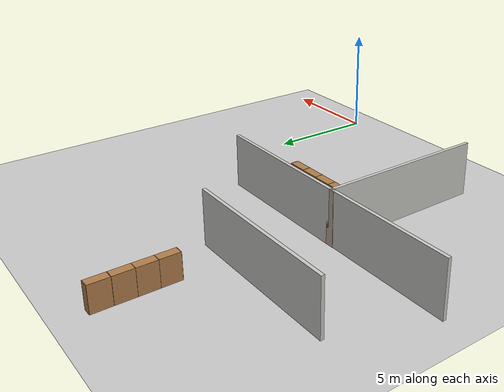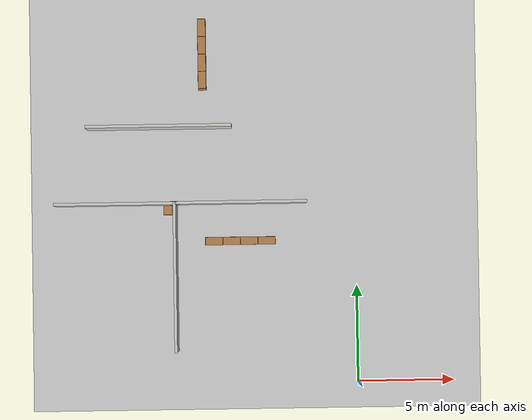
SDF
<sdf version="1.6">
 <world name="default">
  <model name="ground_plane">
   <static>1</static>
   <link name="link">
    <collision name="collision">
     <geometry><plane><normal>0 0 1</normal><size>100 100</size></plane></geometry>
     <surface><friction><ode><mu>100</mu><mu2>50</mu2></ode></friction></surface>
    </collision>
    <visual name="visual">
     <cast_shadows>0</cast_shadows>
     <geometry><plane><normal>0 0 1</normal><size>100 100</size></plane></geometry>
     <material>
      <script><uri>file://media/materials/scripts/gazebo.material</uri><name>Gazebo/Grey</name></script>
     </material>
    </visual>
   </link>
  </model>
  <model name="floor">
   <link name="Wall_136">
    <pose>-11.4201 14.599 0 0 -0 0</pose>
    <visual name="Wall_136_Visual">
     <pose>0 0 1.25 0 -0 0</pose>
     <geometry><box><size>7.5 0.15 2.5</size></box></geometry>
     <material>
      <script><uri>file://media/materials/scripts/gazebo.material</uri><name>Gazebo/CeilingTiled</name></script>
      <ambient>0.760784 0.662745 0.627451 1</ambient>
     </material>
     <meta><layer>0</layer></meta>
    </visual>
    <collision name="Wall_136_Collision">
     <pose>0 0 1.25 0 -0 0</pose>
     <geometry><box><size>7.5 0.15 2.5</size></box></geometry>
     <surface>
      <friction>
       <ode><mu>1</mu><mu2>1</mu2><fdir1>0 0 0</fdir1><slip1>0</slip1><slip2>0</slip2></ode>
       <torsional>
        <coefficient>1</coefficient>
        <patch_radius>0</patch_radius>
        <surface_radius>0</surface_radius>
        <use_patch_radius>1</use_patch_radius>
        <ode><slip>0</slip></ode>
       </torsional>
      </friction>
      <bounce><restitution_coefficient>0</restitution_coefficient><threshold>1e+06</threshold></bounce>
      <contact>
       <collide_without_contact>0</collide_without_contact>
       <collide_without_contact_bitmask>1</collide_without_contact_bitmask>
       <collide_bitmask>1</collide_bitmask>
       <ode>
        <soft_cfm>0</soft_cfm>
        <soft_erp>0.2</soft_erp>
        <kp>1e+13</kp>
        <kd>1</kd>
        <max_vel>0.01</max_vel>
        <min_depth>0</min_depth>
       </ode>
       <bullet>
        <split_impulse>1</split_impulse>
        <split_impulse_penetration_threshold>-0.01</split_impulse_penetration_threshold>
        <soft_cfm>0</soft_cfm>
        <soft_erp>0.2</soft_erp>
        <kp>1e+13</kp>
        <kd>1</kd>
       </bullet>
      </contact>
     </surface>
    </collision>
   </link>
   <link name="Wall_198">
    <pose>-7.22735 10.6471 0 0 -0 0</pose>
    <visual name="Wall_198_Visual">
     <pose>0 0 1.25 0 -0 0</pose>
     <geometry><box><size>6.75 0.15 2.5</size></box></geometry>
     <material>
      <script><uri>file://media/materials/scripts/gazebo.material</uri><name>Gazebo/CeilingTiled</name></script>
      <ambient>0.760784 0.662745 0.627451 1</ambient>
     </material>
     <meta><layer>0</layer></meta>
    </visual>
    <collision name="Wall_198_Collision">
     <pose>0 0 1.25 0 -0 0</pose>
     <geometry><box><size>6.75 0.15 2.5</size></box></geometry>
     <surface>
      <friction>
       <ode><mu>1</mu><mu2>1</mu2><fdir1>0 0 0</fdir1><slip1>0</slip1><slip2>0</slip2></ode>
       <torsional>
        <coefficient>1</coefficient>
        <patch_radius>0</patch_radius>
        <surface_radius>0</surface_radius>
        <use_patch_radius>1</use_patch_radius>
        <ode><slip>0</slip></ode>
       </torsional>
      </friction>
      <bounce><restitution_coefficient>0</restitution_coefficient><threshold>1e+06</threshold></bounce>
      <contact>
       <collide_without_contact>0</collide_without_contact>
       <collide_without_contact_bitmask>1</collide_without_contact_bitmask>
       <collide_bitmask>1</collide_bitmask>
       <ode>
        <soft_cfm>0</soft_cfm>
        <soft_erp>0.2</soft_erp>
        <kp>1e+13</kp>
        <kd>1</kd>
        <max_vel>0.01</max_vel>
        <min_depth>0</min_depth>
       </ode>
       <bullet>
        <split_impulse>1</split_impulse>
        <split_impulse_penetration_threshold>-0.01</split_impulse_penetration_threshold>
        <soft_cfm>0</soft_cfm>
        <soft_erp>0.2</soft_erp>
        <kp>1e+13</kp>
        <kd>1</kd>
       </bullet>
      </contact>
     </surface>
    </collision>
   </link>
   <link name="Wall_204">
    <pose>-10.6495 6.83193 0 0 -0 1.5708</pose>
    <visual name="Wall_204_Visual">
     <pose>0 0 1.25 0 -0 0</pose>
     <geometry><box><size>7.75 0.15 2.5</size></box></geometry>
     <material>
      <script><uri>file://media/materials/scripts/gazebo.material</uri><name>Gazebo/CeilingTiled</name></script>
      <ambient>0.760784 0.662745 0.627451 1</ambient>
     </material>
     <meta><layer>0</layer></meta>
    </visual>
    <collision name="Wall_204_Collision">
     <pose>0 0 1.25 0 -0 0</pose>
     <geometry><box><size>7.75 0.15 2.5</size></box></geometry>
     <surface>
      <friction>
       <ode><mu>1</mu><mu2>1</mu2><fdir1>0 0 0</fdir1><slip1>0</slip1><slip2>0</slip2></ode>
       <torsional>
        <coefficient>1</coefficient>
        <patch_radius>0</patch_radius>
        <surface_radius>0</surface_radius>
        <use_patch_radius>1</use_patch_radius>
        <ode><slip>0</slip></ode>
       </torsional>
      </friction>
      <bounce><restitution_coefficient>0</restitution_coefficient><threshold>1e+06</threshold></bounce>
      <contact>
       <collide_without_contact>0</collide_without_contact>
       <collide_without_contact_bitmask>1</collide_without_contact_bitmask>
       <collide_bitmask>1</collide_bitmask>
       <ode>
        <soft_cfm>0</soft_cfm>
        <soft_erp>0.2</soft_erp>
        <kp>1e+13</kp>
        <kd>1</kd>
        <max_vel>0.01</max_vel>
        <min_depth>0</min_depth>
       </ode>
       <bullet>
        <split_impulse>1</split_impulse>
        <split_impulse_penetration_threshold>-0.01</split_impulse_penetration_threshold>
        <soft_cfm>0</soft_cfm>
        <soft_erp>0.2</soft_erp>
        <kp>1e+13</kp>
        <kd>1</kd>
       </bullet>
      </contact>
     </surface>
    </collision>
   </link>
   <link name="Wall_205">
    <pose>-10.6445 10.6319 0 0 -0 0</pose>
    <visual name="Wall_205_Visual">
     <pose>0 0 1.25 0 -0 0</pose>
     <geometry><box><size>0.16 0.15 2.5</size></box></geometry>
     <material>
      <script><uri>file://media/materials/scripts/gazebo.material</uri><name>Gazebo/Grey</name></script>
      <ambient>1 1 1 1</ambient>
     </material>
     <meta><layer>0</layer></meta>
    </visual>
    <collision name="Wall_205_Collision">
     <pose>0 0 1.25 0 -0 0</pose>
     <geometry><box><size>0.16 0.15 2.5</size></box></geometry>
     <surface>
      <friction>
       <ode><mu>1</mu><mu2>1</mu2><fdir1>0 0 0</fdir1><slip1>0</slip1><slip2>0</slip2></ode>
       <torsional>
        <coefficient>1</coefficient>
        <patch_radius>0</patch_radius>
        <surface_radius>0</surface_radius>
        <use_patch_radius>1</use_patch_radius>
        <ode><slip>0</slip></ode>
       </torsional>
      </friction>
      <bounce><restitution_coefficient>0</restitution_coefficient><threshold>1e+06</threshold></bounce>
      <contact>
       <collide_without_contact>0</collide_without_contact>
       <collide_without_contact_bitmask>1</collide_without_contact_bitmask>
       <collide_bitmask>1</collide_bitmask>
       <ode>
        <soft_cfm>0</soft_cfm>
        <soft_erp>0.2</soft_erp>
        <kp>1e+13</kp>
        <kd>1</kd>
        <max_vel>0.01</max_vel>
        <min_depth>0</min_depth>
       </ode>
       <bullet>
        <split_impulse>1</split_impulse>
        <split_impulse_penetration_threshold>-0.01</split_impulse_penetration_threshold>
        <soft_cfm>0</soft_cfm>
        <soft_erp>0.2</soft_erp>
        <kp>1e+13</kp>
        <kd>1</kd>
       </bullet>
      </contact>
     </surface>
    </collision>
   </link>
   <link name="Wall_220">
    <pose>-13.6895 10.6319 0 0 -0 3.14159</pose>
    <visual name="Wall_220_Visual">
     <pose>0 0 1.25 0 -0 0</pose>
     <geometry><box><size>6.25 0.15 2.5</size></box></geometry>
     <material>
      <script><uri>file://media/materials/scripts/gazebo.material</uri><name>Gazebo/CeilingTiled</name></script>
      <ambient>0.760784 0.662745 0.627451 1</ambient>
     </material>
     <meta><layer>0</layer></meta>
    </visual>
    <collision name="Wall_220_Collision">
     <pose>0 0 1.25 0 -0 0</pose>
     <geometry><box><size>6.25 0.15 2.5</size></box></geometry>
     <surface>
      <friction>
       <ode><mu>1</mu><mu2>1</mu2><fdir1>0 0 0</fdir1><slip1>0</slip1><slip2>0</slip2></ode>
       <torsional>
        <coefficient>1</coefficient>
        <patch_radius>0</patch_radius>
        <surface_radius>0</surface_radius>
        <use_patch_radius>1</use_patch_radius>
        <ode><slip>0</slip></ode>
       </torsional>
      </friction>
      <bounce><restitution_coefficient>0</restitution_coefficient><threshold>1e+06</threshold></bounce>
      <contact>
       <collide_without_contact>0</collide_without_contact>
       <collide_without_contact_bitmask>1</collide_without_contact_bitmask>
       <collide_bitmask>1</collide_bitmask>
       <ode>
        <soft_cfm>0</soft_cfm>
        <soft_erp>0.2</soft_erp>
        <kp>1e+13</kp>
        <kd>1</kd>
        <max_vel>0.01</max_vel>
        <min_depth>0</min_depth>
       </ode>
       <bullet>
        <split_impulse>1</split_impulse>
        <split_impulse_penetration_threshold>-0.01</split_impulse_penetration_threshold>
        <soft_cfm>0</soft_cfm>
        <soft_erp>0.2</soft_erp>
        <kp>1e+13</kp>
        <kd>1</kd>
       </bullet>
      </contact>
     </surface>
    </collision>
   </link>
   <link name="Wall_75">
    <pose>-10.6523 10.6471 0 0 -0 3.14159</pose>
    <visual name="Wall_75_Visual">
     <pose>0 0 1.25 0 -0 0</pose>
     <geometry><box><size>0.4 0.15 2.5</size></box></geometry>
     <material>
      <script><uri>file://media/materials/scripts/gazebo.material</uri><name>Gazebo/Grey</name></script>
      <ambient>0.760784 0.662745 0.627451 1</ambient>
     </material>
     <meta><layer>0</layer></meta>
    </visual>
    <collision name="Wall_75_Collision">
     <pose>0 0 1.25 0 -0 0</pose>
     <geometry><box><size>0.4 0.15 2.5</size></box></geometry>
     <surface>
      <friction>
       <ode><mu>1</mu><mu2>1</mu2><fdir1>0 0 0</fdir1><slip1>0</slip1><slip2>0</slip2></ode>
       <torsional>
        <coefficient>1</coefficient>
        <patch_radius>0</patch_radius>
        <surface_radius>0</surface_radius>
        <use_patch_radius>1</use_patch_radius>
        <ode><slip>0</slip></ode>
       </torsional>
      </friction>
      <bounce><restitution_coefficient>0</restitution_coefficient><threshold>1e+06</threshold></bounce>
      <contact>
       <collide_without_contact>0</collide_without_contact>
       <collide_without_contact_bitmask>1</collide_without_contact_bitmask>
       <collide_bitmask>1</collide_bitmask>
       <ode>
        <soft_cfm>0</soft_cfm>
        <soft_erp>0.2</soft_erp>
        <kp>1e+13</kp>
        <kd>1</kd>
        <max_vel>0.01</max_vel>
        <min_depth>0</min_depth>
       </ode>
       <bullet>
        <split_impulse>1</split_impulse>
        <split_impulse_penetration_threshold>-0.01</split_impulse_penetration_threshold>
        <soft_cfm>0</soft_cfm>
        <soft_erp>0.2</soft_erp>
        <kp>1e+13</kp>
        <kd>1</kd>
       </bullet>
      </contact>
     </surface>
    </collision>
   </link>
   <static>1</static>
   <pose>1.26361 -1.27025 0 0 -0 0</pose>
  </model>
  <model name="Bookshelf-4">
   <model name="bookshelf">
    <static>1</static>
    <link name="link">
     <inertial><mass>1</mass></inertial>
     <collision name="back">
      <pose>0 0.005 0.6 0 -0 0</pose>
      <geometry><box><size>0.9 0.01 1.2</size></box></geometry>
     </collision>
     <visual name="visual1">
      <pose>0 0.005 0.6 0 -0 0</pose>
      <geometry><box><size>0.9 0.01 1.2</size></box></geometry>
      <material>
       <script><uri>file://media/materials/scripts/gazebo.material</uri><name>Gazebo/Wood</name></script>
      </material>
     </visual>
     <collision name="left_side">
      <pose>0.45 -0.195 0.6 0 -0 0</pose>
      <geometry><box><size>0.02 0.4 1.2</size></box></geometry>
     </collision>
     <visual name="visual2">
      <pose>0.45 -0.195 0.6 0 -0 0</pose>
      <geometry><box><size>0.02 0.4 1.2</size></box></geometry>
      <material>
       <script><uri>file://media/materials/scripts/gazebo.material</uri><name>Gazebo/Wood</name></script>
      </material>
     </visual>
     <collision name="right_side">
      <pose>-0.45 -0.195 0.6 0 -0 0</pose>
      <geometry><box><size>0.02 0.4 1.2</size></box></geometry>
     </collision>
     <visual name="visual3">
      <pose>-0.45 -0.195 0.6 0 -0 0</pose>
      <geometry><box><size>0.02 0.4 1.2</size></box></geometry>
      <material>
       <script><uri>file://media/materials/scripts/gazebo.material</uri><name>Gazebo/Wood</name></script>
      </material>
     </visual>
     <collision name="bottom">
      <pose>0 -0.195 0.03 0 -0 0</pose>
      <geometry><box><size>0.88 0.4 0.06</size></box></geometry>
     </collision>
     <visual name="visual4">
      <pose>0 -0.195 0.03 0 -0 0</pose>
      <geometry><box><size>0.88 0.4 0.06</size></box></geometry>
      <material>
       <script><uri>file://media/materials/scripts/gazebo.material</uri><name>Gazebo/Wood</name></script>
      </material>
     </visual>
     <collision name="top">
      <pose>0 -0.195 1.19 0 -0 0</pose>
      <geometry><box><size>0.88 0.4 0.02</size></box></geometry>
     </collision>
     <visual name="visual5">
      <pose>0 -0.195 1.19 0 -0 0</pose>
      <geometry><box><size>0.88 0.4 0.02</size></box></geometry>
      <material>
       <script><uri>file://media/materials/scripts/gazebo.material</uri><name>Gazebo/Wood</name></script>
      </material>
     </visual>
     <collision name="low_shelf">
      <pose>0 -0.195 0.43 0 -0 0</pose>
      <geometry><box><size>0.88 0.4 0.02</size></box></geometry>
     </collision>
     <visual name="visual6">
      <pose>0 -0.195 0.43 0 -0 0</pose>
      <geometry><box><size>0.88 0.4 0.02</size></box></geometry>
      <material>
       <script><uri>file://media/materials/scripts/gazebo.material</uri><name>Gazebo/Wood</name></script>
      </material>
     </visual>
     <collision name="high_shelf">
      <pose>0 -0.195 0.8 0 -0 0</pose>
      <geometry><box><size>0.88 0.4 0.02</size></box></geometry>
     </collision>
     <visual name="visual7">
      <pose>0 -0.195 0.8 0 -0 0</pose>
      <geometry><box><size>0.88 0.4 0.02</size></box></geometry>
      <material>
       <script><uri>file://media/materials/scripts/gazebo.material</uri><name>Gazebo/Wood</name></script>
      </material>
     </visual>
    </link>
    <pose>-1.35671 -0.002097 0 0 -0 0</pose>
   </model>
   <model name="bookshelf_0">
    <static>1</static>
    <link name="link">
     <inertial><mass>1</mass></inertial>
     <collision name="back">
      <pose>0 0.005 0.6 0 -0 0</pose>
      <geometry><box><size>0.9 0.01 1.2</size></box></geometry>
     </collision>
     <visual name="visual1">
      <pose>0 0.005 0.6 0 -0 0</pose>
      <geometry><box><size>0.9 0.01 1.2</size></box></geometry>
      <material>
       <script><uri>file://media/materials/scripts/gazebo.material</uri><name>Gazebo/Wood</name></script>
      </material>
     </visual>
     <collision name="left_side">
      <pose>0.45 -0.195 0.6 0 -0 0</pose>
      <geometry><box><size>0.02 0.4 1.2</size></box></geometry>
     </collision>
     <visual name="visual2">
      <pose>0.45 -0.195 0.6 0 -0 0</pose>
      <geometry><box><size>0.02 0.4 1.2</size></box></geometry>
      <material>
       <script><uri>file://media/materials/scripts/gazebo.material</uri><name>Gazebo/Wood</name></script>
      </material>
     </visual>
     <collision name="right_side">
      <pose>-0.45 -0.195 0.6 0 -0 0</pose>
      <geometry><box><size>0.02 0.4 1.2</size></box></geometry>
     </collision>
     <visual name="visual3">
      <pose>-0.45 -0.195 0.6 0 -0 0</pose>
      <geometry><box><size>0.02 0.4 1.2</size></box></geometry>
      <material>
       <script><uri>file://media/materials/scripts/gazebo.material</uri><name>Gazebo/Wood</name></script>
      </material>
     </visual>
     <collision name="bottom">
      <pose>0 -0.195 0.03 0 -0 0</pose>
      <geometry><box><size>0.88 0.4 0.06</size></box></geometry>
     </collision>
     <visual name="visual4">
      <pose>0 -0.195 0.03 0 -0 0</pose>
      <geometry><box><size>0.88 0.4 0.06</size></box></geometry>
      <material>
       <script><uri>file://media/materials/scripts/gazebo.material</uri><name>Gazebo/Wood</name></script>
      </material>
     </visual>
     <collision name="top">
      <pose>0 -0.195 1.19 0 -0 0</pose>
      <geometry><box><size>0.88 0.4 0.02</size></box></geometry>
     </collision>
     <visual name="visual5">
      <pose>0 -0.195 1.19 0 -0 0</pose>
      <geometry><box><size>0.88 0.4 0.02</size></box></geometry>
      <material>
       <script><uri>file://media/materials/scripts/gazebo.material</uri><name>Gazebo/Wood</name></script>
      </material>
     </visual>
     <collision name="low_shelf">
      <pose>0 -0.195 0.43 0 -0 0</pose>
      <geometry><box><size>0.88 0.4 0.02</size></box></geometry>
     </collision>
     <visual name="visual6">
      <pose>0 -0.195 0.43 0 -0 0</pose>
      <geometry><box><size>0.88 0.4 0.02</size></box></geometry>
      <material>
       <script><uri>file://media/materials/scripts/gazebo.material</uri><name>Gazebo/Wood</name></script>
      </material>
     </visual>
     <collision name="high_shelf">
      <pose>0 -0.195 0.8 0 -0 0</pose>
      <geometry><box><size>0.88 0.4 0.02</size></box></geometry>
     </collision>
     <visual name="visual7">
      <pose>0 -0.195 0.8 0 -0 0</pose>
      <geometry><box><size>0.88 0.4 0.02</size></box></geometry>
      <material>
       <script><uri>file://media/materials/scripts/gazebo.material</uri><name>Gazebo/Wood</name></script>
      </material>
     </visual>
    </link>
    <pose>-0.452974 0.001386 0 0 -0 0</pose>
   </model>
   <model name="bookshelf_1">
    <static>1</static>
    <link name="link">
     <inertial><mass>1</mass></inertial>
     <collision name="back">
      <pose>0 0.005 0.6 0 -0 0</pose>
      <geometry><box><size>0.9 0.01 1.2</size></box></geometry>
     </collision>
     <visual name="visual1">
      <pose>0 0.005 0.6 0 -0 0</pose>
      <geometry><box><size>0.9 0.01 1.2</size></box></geometry>
      <material>
       <script><uri>file://media/materials/scripts/gazebo.material</uri><name>Gazebo/Wood</name></script>
      </material>
     </visual>
     <collision name="left_side">
      <pose>0.45 -0.195 0.6 0 -0 0</pose>
      <geometry><box><size>0.02 0.4 1.2</size></box></geometry>
     </collision>
     <visual name="visual2">
      <pose>0.45 -0.195 0.6 0 -0 0</pose>
      <geometry><box><size>0.02 0.4 1.2</size></box></geometry>
      <material>
       <script><uri>file://media/materials/scripts/gazebo.material</uri><name>Gazebo/Wood</name></script>
      </material>
     </visual>
     <collision name="right_side">
      <pose>-0.45 -0.195 0.6 0 -0 0</pose>
      <geometry><box><size>0.02 0.4 1.2</size></box></geometry>
     </collision>
     <visual name="visual3">
      <pose>-0.45 -0.195 0.6 0 -0 0</pose>
      <geometry><box><size>0.02 0.4 1.2</size></box></geometry>
      <material>
       <script><uri>file://media/materials/scripts/gazebo.material</uri><name>Gazebo/Wood</name></script>
      </material>
     </visual>
     <collision name="bottom">
      <pose>0 -0.195 0.03 0 -0 0</pose>
      <geometry><box><size>0.88 0.4 0.06</size></box></geometry>
     </collision>
     <visual name="visual4">
      <pose>0 -0.195 0.03 0 -0 0</pose>
      <geometry><box><size>0.88 0.4 0.06</size></box></geometry>
      <material>
       <script><uri>file://media/materials/scripts/gazebo.material</uri><name>Gazebo/Wood</name></script>
      </material>
     </visual>
     <collision name="top">
      <pose>0 -0.195 1.19 0 -0 0</pose>
      <geometry><box><size>0.88 0.4 0.02</size></box></geometry>
     </collision>
     <visual name="visual5">
      <pose>0 -0.195 1.19 0 -0 0</pose>
      <geometry><box><size>0.88 0.4 0.02</size></box></geometry>
      <material>
       <script><uri>file://media/materials/scripts/gazebo.material</uri><name>Gazebo/Wood</name></script>
      </material>
     </visual>
     <collision name="low_shelf">
      <pose>0 -0.195 0.43 0 -0 0</pose>
      <geometry><box><size>0.88 0.4 0.02</size></box></geometry>
     </collision>
     <visual name="visual6">
      <pose>0 -0.195 0.43 0 -0 0</pose>
      <geometry><box><size>0.88 0.4 0.02</size></box></geometry>
      <material>
       <script><uri>file://media/materials/scripts/gazebo.material</uri><name>Gazebo/Wood</name></script>
      </material>
     </visual>
     <collision name="high_shelf">
      <pose>0 -0.195 0.8 0 -0 0</pose>
      <geometry><box><size>0.88 0.4 0.02</size></box></geometry>
     </collision>
     <visual name="visual7">
      <pose>0 -0.195 0.8 0 -0 0</pose>
      <geometry><box><size>0.88 0.4 0.02</size></box></geometry>
      <material>
       <script><uri>file://media/materials/scripts/gazebo.material</uri><name>Gazebo/Wood</name></script>
      </material>
     </visual>
    </link>
    <pose>0.450456 0.000733 0 0 -0 0</pose>
   </model>
   <model name="bookshelf_2">
    <static>1</static>
    <link name="link">
     <inertial><mass>1</mass></inertial>
     <collision name="back">
      <pose>0 0.005 0.6 0 -0 0</pose>
      <geometry><box><size>0.9 0.01 1.2</size></box></geometry>
     </collision>
     <visual name="visual1">
      <pose>0 0.005 0.6 0 -0 0</pose>
      <geometry><box><size>0.9 0.01 1.2</size></box></geometry>
      <material>
       <script><uri>file://media/materials/scripts/gazebo.material</uri><name>Gazebo/Wood</name></script>
      </material>
     </visual>
     <collision name="left_side">
      <pose>0.45 -0.195 0.6 0 -0 0</pose>
      <geometry><box><size>0.02 0.4 1.2</size></box></geometry>
     </collision>
     <visual name="visual2">
      <pose>0.45 -0.195 0.6 0 -0 0</pose>
      <geometry><box><size>0.02 0.4 1.2</size></box></geometry>
      <material>
       <script><uri>file://media/materials/scripts/gazebo.material</uri><name>Gazebo/Wood</name></script>
      </material>
     </visual>
     <collision name="right_side">
      <pose>-0.45 -0.195 0.6 0 -0 0</pose>
      <geometry><box><size>0.02 0.4 1.2</size></box></geometry>
     </collision>
     <visual name="visual3">
      <pose>-0.45 -0.195 0.6 0 -0 0</pose>
      <geometry><box><size>0.02 0.4 1.2</size></box></geometry>
      <material>
       <script><uri>file://media/materials/scripts/gazebo.material</uri><name>Gazebo/Wood</name></script>
      </material>
     </visual>
     <collision name="bottom">
      <pose>0 -0.195 0.03 0 -0 0</pose>
      <geometry><box><size>0.88 0.4 0.06</size></box></geometry>
     </collision>
     <visual name="visual4">
      <pose>0 -0.195 0.03 0 -0 0</pose>
      <geometry><box><size>0.88 0.4 0.06</size></box></geometry>
      <material>
       <script><uri>file://media/materials/scripts/gazebo.material</uri><name>Gazebo/Wood</name></script>
      </material>
     </visual>
     <collision name="top">
      <pose>0 -0.195 1.19 0 -0 0</pose>
      <geometry><box><size>0.88 0.4 0.02</size></box></geometry>
     </collision>
     <visual name="visual5">
      <pose>0 -0.195 1.19 0 -0 0</pose>
      <geometry><box><size>0.88 0.4 0.02</size></box></geometry>
      <material>
       <script><uri>file://media/materials/scripts/gazebo.material</uri><name>Gazebo/Wood</name></script>
      </material>
     </visual>
     <collision name="low_shelf">
      <pose>0 -0.195 0.43 0 -0 0</pose>
      <geometry><box><size>0.88 0.4 0.02</size></box></geometry>
     </collision>
     <visual name="visual6">
      <pose>0 -0.195 0.43 0 -0 0</pose>
      <geometry><box><size>0.88 0.4 0.02</size></box></geometry>
      <material>
       <script><uri>file://media/materials/scripts/gazebo.material</uri><name>Gazebo/Wood</name></script>
      </material>
     </visual>
     <collision name="high_shelf">
      <pose>0 -0.195 0.8 0 -0 0</pose>
      <geometry><box><size>0.88 0.4 0.02</size></box></geometry>
     </collision>
     <visual name="visual7">
      <pose>0 -0.195 0.8 0 -0 0</pose>
      <geometry><box><size>0.88 0.4 0.02</size></box></geometry>
      <material>
       <script><uri>file://media/materials/scripts/gazebo.material</uri><name>Gazebo/Wood</name></script>
      </material>
     </visual>
    </link>
    <pose>1.35922 -1.7e-05 0 0 -0 0</pose>
   </model>
   <static>0</static>
   <pose>-6.04191 7.58029 0 0 -0 0</pose>
  </model>
  <model name="Bookshelf-4_clone_31_clone">
   <model name="bookshelf">
    <static>1</static>
    <link name="link">
     <inertial><mass>1</mass></inertial>
     <collision name="back">
      <pose>0 0.005 0.6 0 -0 0</pose>
      <geometry><box><size>0.9 0.01 1.2</size></box></geometry>
     </collision>
     <visual name="visual1">
      <pose>0 0.005 0.6 0 -0 0</pose>
      <geometry><box><size>0.9 0.01 1.2</size></box></geometry>
      <material>
       <script><uri>file://media/materials/scripts/gazebo.material</uri><name>Gazebo/Wood</name></script>
      </material>
     </visual>
     <collision name="left_side">
      <pose>0.45 -0.195 0.6 0 -0 0</pose>
      <geometry><box><size>0.02 0.4 1.2</size></box></geometry>
     </collision>
     <visual name="visual2">
      <pose>0.45 -0.195 0.6 0 -0 0</pose>
      <geometry><box><size>0.02 0.4 1.2</size></box></geometry>
      <material>
       <script><uri>file://media/materials/scripts/gazebo.material</uri><name>Gazebo/Wood</name></script>
      </material>
     </visual>
     <collision name="right_side">
      <pose>-0.45 -0.195 0.6 0 -0 0</pose>
      <geometry><box><size>0.02 0.4 1.2</size></box></geometry>
     </collision>
     <visual name="visual3">
      <pose>-0.45 -0.195 0.6 0 -0 0</pose>
      <geometry><box><size>0.02 0.4 1.2</size></box></geometry>
      <material>
       <script><uri>file://media/materials/scripts/gazebo.material</uri><name>Gazebo/Wood</name></script>
      </material>
     </visual>
     <collision name="bottom">
      <pose>0 -0.195 0.03 0 -0 0</pose>
      <geometry><box><size>0.88 0.4 0.06</size></box></geometry>
     </collision>
     <visual name="visual4">
      <pose>0 -0.195 0.03 0 -0 0</pose>
      <geometry><box><size>0.88 0.4 0.06</size></box></geometry>
      <material>
       <script><uri>file://media/materials/scripts/gazebo.material</uri><name>Gazebo/Wood</name></script>
      </material>
     </visual>
     <collision name="top">
      <pose>0 -0.195 1.19 0 -0 0</pose>
      <geometry><box><size>0.88 0.4 0.02</size></box></geometry>
     </collision>
     <visual name="visual5">
      <pose>0 -0.195 1.19 0 -0 0</pose>
      <geometry><box><size>0.88 0.4 0.02</size></box></geometry>
      <material>
       <script><uri>file://media/materials/scripts/gazebo.material</uri><name>Gazebo/Wood</name></script>
      </material>
     </visual>
     <collision name="low_shelf">
      <pose>0 -0.195 0.43 0 -0 0</pose>
      <geometry><box><size>0.88 0.4 0.02</size></box></geometry>
     </collision>
     <visual name="visual6">
      <pose>0 -0.195 0.43 0 -0 0</pose>
      <geometry><box><size>0.88 0.4 0.02</size></box></geometry>
      <material>
       <script><uri>file://media/materials/scripts/gazebo.material</uri><name>Gazebo/Wood</name></script>
      </material>
     </visual>
     <collision name="high_shelf">
      <pose>0 -0.195 0.8 0 -0 0</pose>
      <geometry><box><size>0.88 0.4 0.02</size></box></geometry>
     </collision>
     <visual name="visual7">
      <pose>0 -0.195 0.8 0 -0 0</pose>
      <geometry><box><size>0.88 0.4 0.02</size></box></geometry>
      <material>
       <script><uri>file://media/materials/scripts/gazebo.material</uri><name>Gazebo/Wood</name></script>
      </material>
     </visual>
    </link>
    <pose>-1.35671 -0.002097 0 0 -0 0</pose>
   </model>
   <model name="bookshelf_0">
    <static>1</static>
    <link name="link">
     <inertial><mass>1</mass></inertial>
     <collision name="back">
      <pose>0 0.005 0.6 0 -0 0</pose>
      <geometry><box><size>0.9 0.01 1.2</size></box></geometry>
     </collision>
     <visual name="visual1">
      <pose>0 0.005 0.6 0 -0 0</pose>
      <geometry><box><size>0.9 0.01 1.2</size></box></geometry>
      <material>
       <script><uri>file://media/materials/scripts/gazebo.material</uri><name>Gazebo/Wood</name></script>
      </material>
     </visual>
     <collision name="left_side">
      <pose>0.45 -0.195 0.6 0 -0 0</pose>
      <geometry><box><size>0.02 0.4 1.2</size></box></geometry>
     </collision>
     <visual name="visual2">
      <pose>0.45 -0.195 0.6 0 -0 0</pose>
      <geometry><box><size>0.02 0.4 1.2</size></box></geometry>
      <material>
       <script><uri>file://media/materials/scripts/gazebo.material</uri><name>Gazebo/Wood</name></script>
      </material>
     </visual>
     <collision name="right_side">
      <pose>-0.45 -0.195 0.6 0 -0 0</pose>
      <geometry><box><size>0.02 0.4 1.2</size></box></geometry>
     </collision>
     <visual name="visual3">
      <pose>-0.45 -0.195 0.6 0 -0 0</pose>
      <geometry><box><size>0.02 0.4 1.2</size></box></geometry>
      <material>
       <script><uri>file://media/materials/scripts/gazebo.material</uri><name>Gazebo/Wood</name></script>
      </material>
     </visual>
     <collision name="bottom">
      <pose>0 -0.195 0.03 0 -0 0</pose>
      <geometry><box><size>0.88 0.4 0.06</size></box></geometry>
     </collision>
     <visual name="visual4">
      <pose>0 -0.195 0.03 0 -0 0</pose>
      <geometry><box><size>0.88 0.4 0.06</size></box></geometry>
      <material>
       <script><uri>file://media/materials/scripts/gazebo.material</uri><name>Gazebo/Wood</name></script>
      </material>
     </visual>
     <collision name="top">
      <pose>0 -0.195 1.19 0 -0 0</pose>
      <geometry><box><size>0.88 0.4 0.02</size></box></geometry>
     </collision>
     <visual name="visual5">
      <pose>0 -0.195 1.19 0 -0 0</pose>
      <geometry><box><size>0.88 0.4 0.02</size></box></geometry>
      <material>
       <script><uri>file://media/materials/scripts/gazebo.material</uri><name>Gazebo/Wood</name></script>
      </material>
     </visual>
     <collision name="low_shelf">
      <pose>0 -0.195 0.43 0 -0 0</pose>
      <geometry><box><size>0.88 0.4 0.02</size></box></geometry>
     </collision>
     <visual name="visual6">
      <pose>0 -0.195 0.43 0 -0 0</pose>
      <geometry><box><size>0.88 0.4 0.02</size></box></geometry>
      <material>
       <script><uri>file://media/materials/scripts/gazebo.material</uri><name>Gazebo/Wood</name></script>
      </material>
     </visual>
     <collision name="high_shelf">
      <pose>0 -0.195 0.8 0 -0 0</pose>
      <geometry><box><size>0.88 0.4 0.02</size></box></geometry>
     </collision>
     <visual name="visual7">
      <pose>0 -0.195 0.8 0 -0 0</pose>
      <geometry><box><size>0.88 0.4 0.02</size></box></geometry>
      <material>
       <script><uri>file://media/materials/scripts/gazebo.material</uri><name>Gazebo/Wood</name></script>
      </material>
     </visual>
    </link>
    <pose>-0.452974 0.001386 0 0 -0 0</pose>
   </model>
   <model name="bookshelf_1">
    <static>1</static>
    <link name="link">
     <inertial><mass>1</mass></inertial>
     <collision name="back">
      <pose>0 0.005 0.6 0 -0 0</pose>
      <geometry><box><size>0.9 0.01 1.2</size></box></geometry>
     </collision>
     <visual name="visual1">
      <pose>0 0.005 0.6 0 -0 0</pose>
      <geometry><box><size>0.9 0.01 1.2</size></box></geometry>
      <material>
       <script><uri>file://media/materials/scripts/gazebo.material</uri><name>Gazebo/Wood</name></script>
      </material>
     </visual>
     <collision name="left_side">
      <pose>0.45 -0.195 0.6 0 -0 0</pose>
      <geometry><box><size>0.02 0.4 1.2</size></box></geometry>
     </collision>
     <visual name="visual2">
      <pose>0.45 -0.195 0.6 0 -0 0</pose>
      <geometry><box><size>0.02 0.4 1.2</size></box></geometry>
      <material>
       <script><uri>file://media/materials/scripts/gazebo.material</uri><name>Gazebo/Wood</name></script>
      </material>
     </visual>
     <collision name="right_side">
      <pose>-0.45 -0.195 0.6 0 -0 0</pose>
      <geometry><box><size>0.02 0.4 1.2</size></box></geometry>
     </collision>
     <visual name="visual3">
      <pose>-0.45 -0.195 0.6 0 -0 0</pose>
      <geometry><box><size>0.02 0.4 1.2</size></box></geometry>
      <material>
       <script><uri>file://media/materials/scripts/gazebo.material</uri><name>Gazebo/Wood</name></script>
      </material>
     </visual>
     <collision name="bottom">
      <pose>0 -0.195 0.03 0 -0 0</pose>
      <geometry><box><size>0.88 0.4 0.06</size></box></geometry>
     </collision>
     <visual name="visual4">
      <pose>0 -0.195 0.03 0 -0 0</pose>
      <geometry><box><size>0.88 0.4 0.06</size></box></geometry>
      <material>
       <script><uri>file://media/materials/scripts/gazebo.material</uri><name>Gazebo/Wood</name></script>
      </material>
     </visual>
     <collision name="top">
      <pose>0 -0.195 1.19 0 -0 0</pose>
      <geometry><box><size>0.88 0.4 0.02</size></box></geometry>
     </collision>
     <visual name="visual5">
      <pose>0 -0.195 1.19 0 -0 0</pose>
      <geometry><box><size>0.88 0.4 0.02</size></box></geometry>
      <material>
       <script><uri>file://media/materials/scripts/gazebo.material</uri><name>Gazebo/Wood</name></script>
      </material>
     </visual>
     <collision name="low_shelf">
      <pose>0 -0.195 0.43 0 -0 0</pose>
      <geometry><box><size>0.88 0.4 0.02</size></box></geometry>
     </collision>
     <visual name="visual6">
      <pose>0 -0.195 0.43 0 -0 0</pose>
      <geometry><box><size>0.88 0.4 0.02</size></box></geometry>
      <material>
       <script><uri>file://media/materials/scripts/gazebo.material</uri><name>Gazebo/Wood</name></script>
      </material>
     </visual>
     <collision name="high_shelf">
      <pose>0 -0.195 0.8 0 -0 0</pose>
      <geometry><box><size>0.88 0.4 0.02</size></box></geometry>
     </collision>
     <visual name="visual7">
      <pose>0 -0.195 0.8 0 -0 0</pose>
      <geometry><box><size>0.88 0.4 0.02</size></box></geometry>
      <material>
       <script><uri>file://media/materials/scripts/gazebo.material</uri><name>Gazebo/Wood</name></script>
      </material>
     </visual>
    </link>
    <pose>0.450456 0.000733 0 0 -0 0</pose>
   </model>
   <model name="bookshelf_2">
    <static>1</static>
    <link name="link">
     <inertial><mass>1</mass></inertial>
     <collision name="back">
      <pose>0 0.005 0.6 0 -0 0</pose>
      <geometry><box><size>0.9 0.01 1.2</size></box></geometry>
     </collision>
     <visual name="visual1">
      <pose>0 0.005 0.6 0 -0 0</pose>
      <geometry><box><size>0.9 0.01 1.2</size></box></geometry>
      <material>
       <script><uri>file://media/materials/scripts/gazebo.material</uri><name>Gazebo/Wood</name></script>
      </material>
     </visual>
     <collision name="left_side">
      <pose>0.45 -0.195 0.6 0 -0 0</pose>
      <geometry><box><size>0.02 0.4 1.2</size></box></geometry>
     </collision>
     <visual name="visual2">
      <pose>0.45 -0.195 0.6 0 -0 0</pose>
      <geometry><box><size>0.02 0.4 1.2</size></box></geometry>
      <material>
       <script><uri>file://media/materials/scripts/gazebo.material</uri><name>Gazebo/Wood</name></script>
      </material>
     </visual>
     <collision name="right_side">
      <pose>-0.45 -0.195 0.6 0 -0 0</pose>
      <geometry><box><size>0.02 0.4 1.2</size></box></geometry>
     </collision>
     <visual name="visual3">
      <pose>-0.45 -0.195 0.6 0 -0 0</pose>
      <geometry><box><size>0.02 0.4 1.2</size></box></geometry>
      <material>
       <script><uri>file://media/materials/scripts/gazebo.material</uri><name>Gazebo/Wood</name></script>
      </material>
     </visual>
     <collision name="bottom">
      <pose>0 -0.195 0.03 0 -0 0</pose>
      <geometry><box><size>0.88 0.4 0.06</size></box></geometry>
     </collision>
     <visual name="visual4">
      <pose>0 -0.195 0.03 0 -0 0</pose>
      <geometry><box><size>0.88 0.4 0.06</size></box></geometry>
      <material>
       <script><uri>file://media/materials/scripts/gazebo.material</uri><name>Gazebo/Wood</name></script>
      </material>
     </visual>
     <collision name="top">
      <pose>0 -0.195 1.19 0 -0 0</pose>
      <geometry><box><size>0.88 0.4 0.02</size></box></geometry>
     </collision>
     <visual name="visual5">
      <pose>0 -0.195 1.19 0 -0 0</pose>
      <geometry><box><size>0.88 0.4 0.02</size></box></geometry>
      <material>
       <script><uri>file://media/materials/scripts/gazebo.material</uri><name>Gazebo/Wood</name></script>
      </material>
     </visual>
     <collision name="low_shelf">
      <pose>0 -0.195 0.43 0 -0 0</pose>
      <geometry><box><size>0.88 0.4 0.02</size></box></geometry>
     </collision>
     <visual name="visual6">
      <pose>0 -0.195 0.43 0 -0 0</pose>
      <geometry><box><size>0.88 0.4 0.02</size></box></geometry>
      <material>
       <script><uri>file://media/materials/scripts/gazebo.material</uri><name>Gazebo/Wood</name></script>
      </material>
     </visual>
     <collision name="high_shelf">
      <pose>0 -0.195 0.8 0 -0 0</pose>
      <geometry><box><size>0.88 0.4 0.02</size></box></geometry>
     </collision>
     <visual name="visual7">
      <pose>0 -0.195 0.8 0 -0 0</pose>
      <geometry><box><size>0.88 0.4 0.02</size></box></geometry>
      <material>
       <script><uri>file://media/materials/scripts/gazebo.material</uri><name>Gazebo/Wood</name></script>
      </material>
     </visual>
    </link>
    <pose>1.35922 -1.7e-05 0 0 -0 0</pose>
   </model>
   <static>0</static>
   <pose>-8.10336 17.0963 0 0 -0 1.5707</pose>
  </model>
  <model name="cabinet">
   <static>1</static>
   <link name="cabinet_bottom_plate">
    <inertial>
     <pose>0 0 -1 0 -0 0</pose>
     <inertia><ixx>2.05</ixx><ixy>0</ixy><ixz>0</ixz><iyy>2.05</iyy><iyz>0</iyz><izz>2.05</izz></inertia>
     <mass>25</mass>
    </inertial>
    <collision name="cabinet_bottom_plate_geom">
     <pose>0 0 0.01 0 -0 0</pose>
     <geometry><box><size>0.45 0.45 0.02</size></box></geometry>
    </collision>
    <visual name="cabinet_bottom_plate_geom_visual">
     <pose>0 0 0.01 0 -0 0</pose>
     <geometry><box><size>0.45 0.45 0.02</size></box></geometry>
     <material>
      <script><uri>file://media/materials/scripts/gazebo.material</uri><name>Gazebo/Wood</name></script>
     </material>
    </visual>
    <collision name="cabinet_bottom_plate_geom_cabinet_back_plate">
     <pose>0.235 0 0.51 0 -0 0</pose>
     <geometry><box><size>0.02 0.45 1.02</size></box></geometry>
    </collision>
    <visual name="cabinet_bottom_plate_geom_cabinet_back_plate_visual">
     <pose>0.235 0 0.51 0 -0 0</pose>
     <geometry><box><size>0.02 0.45 1.02</size></box></geometry>
     <material>
      <script><uri>file://media/materials/scripts/gazebo.material</uri><name>Gazebo/Wood</name></script>
     </material>
    </visual>
    <collision name="cabinet_bottom_plate_geom_cabinet_left_plate">
     <pose>0 0.235 0.51 0 -0 0</pose>
     <geometry><box><size>0.45 0.02 1.02</size></box></geometry>
    </collision>
    <visual name="cabinet_bottom_plate_geom_cabinet_left_plate_visual">
     <pose>0 0.235 0.51 0 -0 0</pose>
     <geometry><box><size>0.45 0.02 1.02</size></box></geometry>
     <material>
      <script><uri>file://media/materials/scripts/gazebo.material</uri><name>Gazebo/Wood</name></script>
     </material>
    </visual>
    <collision name="cabinet_bottom_plate_geom_cabinet_middle_plate">
     <pose>0 0 0.51 0 -0 0</pose>
     <geometry><box><size>0.45 0.45 0.02</size></box></geometry>
    </collision>
    <visual name="cabinet_bottom_plate_geom_cabinet_middle_plate_visual">
     <pose>0 0 0.51 0 -0 0</pose>
     <geometry><box><size>0.45 0.45 0.02</size></box></geometry>
     <material>
      <script><uri>file://media/materials/scripts/gazebo.material</uri><name>Gazebo/Wood</name></script>
     </material>
    </visual>
    <collision name="cabinet_bottom_plate_geom_cabinet_right_plate">
     <pose>0 -0.235 0.51 0 -0 0</pose>
     <geometry><box><size>0.45 0.02 1.02</size></box></geometry>
    </collision>
    <visual name="cabinet_bottom_plate_geom_cabinet_right_plate_visual">
     <pose>0 -0.235 0.51 0 -0 0</pose>
     <geometry><box><size>0.45 0.02 1.02</size></box></geometry>
     <material>
      <script><uri>file://media/materials/scripts/gazebo.material</uri><name>Gazebo/Wood</name></script>
     </material>
    </visual>
    <collision name="cabinet_bottom_plate_geom_cabinet_top_plate">
     <pose>0 0 1.01 0 -0 0</pose>
     <geometry><box><size>0.45 0.45 0.02</size></box></geometry>
    </collision>
    <visual name="cabinet_bottom_plate_geom_cabinet_top_plate_visual">
     <pose>0 0 1.01 0 -0 0</pose>
     <geometry><box><size>0.45 0.45 0.02</size></box></geometry>
     <material>
      <script><uri>file://media/materials/scripts/gazebo.material</uri><name>Gazebo/Wood</name></script>
     </material>
    </visual>
   </link>
   <pose>-9.75983 9.02423 0 0 -0 0</pose>
  </model>
 </world>
</sdf>
